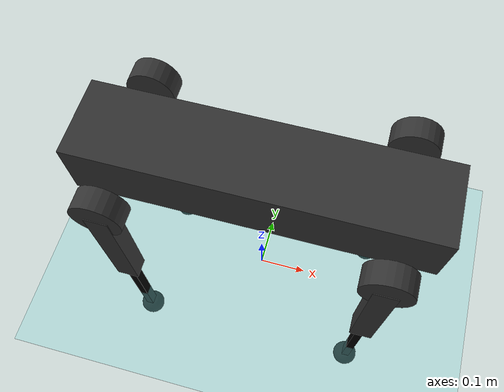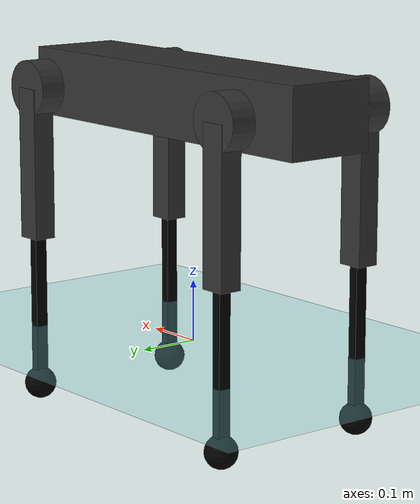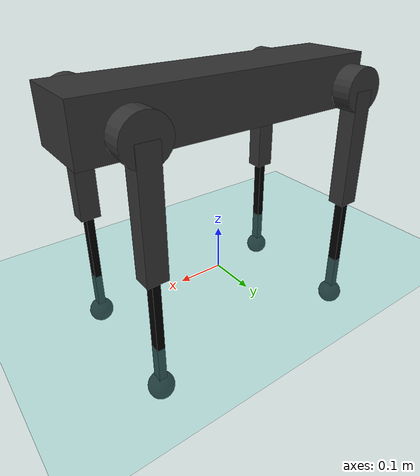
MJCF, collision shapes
<mujoco model="aliengo_description">
    <compiler angle="radian" meshdir="meshes/" />
    <size njmax="500" nconmax="100" />
    <option gravity="0 0 -9.806"
            iterations="50"
            solver="Newton"
            timestep="0.002"
            cone="elliptic"
            impratio="1000"/>

    <default>
        <geom contype="1"
              conaffinity="1"
              friction="1 0.3 0.3"
              rgba="0.5 0.6 0.7 1"
              margin="0.001"
              group="0"/>

        <light castshadow="false" diffuse="1 1 1"/>
        <camera fovy="60"/>
        <joint damping="0.0" armature="0.0" frictionloss="0.0" />
    </default>

    <asset>
        <mesh name="trunk" file="trunk.stl" />
        <mesh name="hip" file="hip.stl" />
        <mesh name="thigh_mirror" file="thigh_mirror.stl" />
        <mesh name="calf" file="calf.stl" />
        <mesh name="thigh" file="thigh.stl" />
    </asset>

    <asset>
        <texture type="skybox"
                 builtin="gradient"
                 rgb1="1.0 1.0 1.0"
                 rgb2="1.0 1.0 1.0"
                 width="512"
                 height="512"/>
        <texture name="plane"
                 type="2d"
                 builtin="flat"
                 rgb1="0.188 0.188 0.188"
                 rgb2="0.188 0.188 0.188"
                 width="512"
                 height="512"
                 mark="cross"
                 markrgb="1 1 1"/>
        <material name="plane"
                  reflectance="0.0"
                  texture="plane"
                  texrepeat="3 3"
                  texuniform="true"/>
    </asset>

    <visual>
        <rgba com="0.502 1.0 0 0.5"
              contactforce="0.98 0.4 0.4 0.7"
              contactpoint="1.0 1.0 0.6 0.4"/>
        <scale com="0.2"
               forcewidth="0.035"
               contactwidth="0.10"
               contactheight="0.04"/>
    </visual>

    <worldbody>
        <light directional="true" diffuse=".8 .8 .8" pos="0 0 10" dir="0 0 -10"/>
        <camera name="track" mode="trackcom" pos="0 -1.3 1.6" xyaxes="1 0 0 0 0.707 0.707"/>

        <geom name="floor"
              type="plane"
              conaffinity="1"
              condim="3"
              contype="1"
              rgba="0.5 0.9 0.9 0.1"
              material="plane"
              pos="0 0 0"
              size="0 0 1"/>

        <body name="trunk" pos="0 0 0.4">
            <!-- Matched to URDF trunk inertial -->
            <inertial pos="0.008811 0.003839 0.000273"
                      mass="11.644"
                      fullinertia="0.051944892 0.24693924 0.270948307 0.001703617 0.000235941 0.000119783" />

            <joint type="free" />

            <geom type="mesh"
                  contype="0"
                  conaffinity="0"
                  group="1"
                  rgba="0.2 0.2 0.2 1"
                  mesh="trunk" />

            <!-- Matched to URDF trunk collision box: full size 0.647 0.15 0.112 -->
            <geom size="0.3235 0.075 0.056"
                  type="box"
                  rgba="0.2 0.2 0.2 0" />

            <geom size="0.0005 0.0005 0.0005"
                  type="box"
                  contype="0"
                  conaffinity="0"
                  group="1"
                  rgba="0.8 0 0 0" />

            <geom size="0.0005 0.0005 0.0005"
                  type="box"
                  rgba="0.8 0 0 0" />

            <site name="imu" pos="0 0 0"/>

            <!-- Optional 1 g IMU inertial from URDF -->
            <body name="imu_link" pos="0 0 0">
                <inertial pos="0 0 0"
                          mass="0.001"
                          fullinertia="0.0001 0.000001 0.0001 0 0 0" />
            </body>

            <!-- Hip rotors fixed to trunk, matched to URDF -->
            <body name="FR_hip_rotor" pos="0.139985 -0.051 0">
                <inertial pos="0 0 0"
                          mass="0.146"
                          fullinertia="0.000138702 0.000083352 0.000083352 0 0 0" />
            </body>

            <body name="FL_hip_rotor" pos="0.139985 0.051 0">
                <inertial pos="0 0 0"
                          mass="0.146"
                          fullinertia="0.000138702 0.000083352 0.000083352 0 0 0" />
            </body>

            <body name="RR_hip_rotor" pos="-0.139985 -0.051 0">
                <inertial pos="0 0 0"
                          mass="0.146"
                          fullinertia="0.000138702 0.000083352 0.000083352 0 0 0" />
            </body>

            <body name="RL_hip_rotor" pos="-0.139985 0.051 0">
                <inertial pos="0 0 0"
                          mass="0.146"
                          fullinertia="0.000138702 0.000083352 0.000083352 0 0 0" />
            </body>

            <body name="FR_hip" pos="0.2407 -0.051 0">
                <inertial pos="-0.022191 -0.015144 -1.5e-05"
                          quat="0.0135493 0.706835 -0.0117635 0.707151"
                          mass="1.993"
                          diaginertia="0.00558695 0.00491009 0.00290132" />

                <joint name="FR_hip_joint"
                       pos="0 0 0"
                       axis="1 0 0"
                       limited="true"
                       range="-1.22173 1.22173" />

                <geom quat="0 1 0 0"
                      type="mesh"
                      contype="0"
                      conaffinity="0"
                      group="1"
                      rgba="0.2 0.2 0.2 1"
                      mesh="hip" />

                <geom size="0.046 0.0209"
                      pos="0 -0.083 0"
                      quat="0.707107 0.707107 0 0"
                      type="cylinder"
                      rgba="0.2 0.2 0.2 0" />

                <body name="FR_thigh_rotor" pos="0 -0.0298 0">
                    <inertial pos="0 0 0"
                              mass="0.146"
                              fullinertia="0.000083352 0.000138702 0.000083352 0 0 0" />
                </body>

                <body name="FR_thigh" pos="0 -0.0868 0">
                    <inertial pos="-0.005607 0.003877 -0.048199"
                              quat="0.694544 -0.0335669 -0.031246 0.717987"
                              mass="0.639"
                              diaginertia="0.0058474 0.00571186 0.000324584" />

                    <joint name="FR_thigh_joint"
                           pos="0 0 0"
                           axis="0 1 0" />

                    <geom type="mesh"
                          contype="0"
                          conaffinity="0"
                          group="1"
                          rgba="0.2 0.2 0.2 1"
                          mesh="thigh_mirror" />

                    <geom size="0.125 0.0187 0.0215"
                          pos="0 0 -0.125"
                          quat="0.707107 0 0.707107 0"
                          type="box"
                          rgba="0.2 0.2 0.2 0" />

                    <body name="FR_calf_rotor" pos="0 0.0997 0">
                        <inertial pos="0 0 0"
                                  mass="0.132"
                                  fullinertia="0.000145463 0.000133031 0.000145463 0 0 0" />
                    </body>

                    <body name="FR_calf" pos="0 0 -0.25">
                        <inertial pos="0.00215606 4.88427e-05 -0.166671"
                                  quat="0.707462 0.00517582 0.00535172 0.706712"
                                  mass="0.267"
                                  diaginertia="0.00690975 0.00689712 5.4885e-05" />

                        <joint name="FR_calf_joint"
                               pos="0 0 0"
                               axis="0 1 0"
                               limited="true"
                               range="-2.77507 -0.645772" />

                        <geom type="mesh"
                              contype="0"
                              conaffinity="0"
                              group="1"
                              rgba="0 0 0 1"
                              mesh="calf" />

                        <geom size="0.125 0.0104 0.008"
                              pos="0 0 -0.125"
                              quat="0.707107 0 0.707107 0"
                              type="box"
                              rgba="0 0 0 0" />

                        <geom name="FR_foot"
                              size="0.0165"
                              pos="0 0 -0.25"
                              contype="0"
                              conaffinity="0"
                              group="1"
                              rgba="0 0 0 1" />

                        <geom size="0.0265"
                              pos="0 0 -0.25"
                              rgba="0 0 0 1" />
                    </body>
                </body>
            </body>

            <body name="FL_hip" pos="0.2407 0.051 0">
                <inertial pos="-0.022191 0.015144 -1.5e-05"
                          quat="-0.0135493 0.706835 0.0117635 0.707151"
                          mass="1.993"
                          diaginertia="0.00558695 0.00491009 0.00290132" />

                <joint name="FL_hip_joint"
                       pos="0 0 0"
                       axis="1 0 0"
                       limited="true"
                       range="-1.22173 1.22173" />

                <geom type="mesh"
                      contype="0"
                      conaffinity="0"
                      group="1"
                      rgba="0.2 0.2 0.2 1"
                      mesh="hip" />

                <geom size="0.046 0.0209"
                      pos="0 0.083 0"
                      quat="0.707107 0.707107 0 0"
                      type="cylinder"
                      rgba="0.2 0.2 0.2 0" />

                <body name="FL_thigh_rotor" pos="0 0.0298 0">
                    <inertial pos="0 0 0"
                              mass="0.146"
                              fullinertia="0.000083352 0.000138702 0.000083352 0 0 0" />
                </body>

                <body name="FL_thigh" pos="0 0.0868 0">
                    <inertial pos="-0.005607 -0.003877 -0.048199"
                              quat="0.717987 -0.031246 -0.0335669 0.694544"
                              mass="0.639"
                              diaginertia="0.0058474 0.00571186 0.000324584" />

                    <joint name="FL_thigh_joint"
                           pos="0 0 0"
                           axis="0 1 0" />

                    <geom type="mesh"
                          contype="0"
                          conaffinity="0"
                          group="1"
                          rgba="0.2 0.2 0.2 1"
                          mesh="thigh" />

                    <geom size="0.125 0.0187 0.0215"
                          pos="0 0 -0.125"
                          quat="0.707107 0 0.707107 0"
                          type="box"
                          rgba="0.2 0.2 0.2 0" />

                    <body name="FL_calf_rotor" pos="0 -0.0997 0">
                        <inertial pos="0 0 0"
                                  mass="0.132"
                                  fullinertia="0.000145463 0.000133031 0.000145463 0 0 0" />
                    </body>

                    <body name="FL_calf" pos="0 0 -0.25">
                        <inertial pos="0.00215606 4.88427e-05 -0.166671"
                                  quat="0.707462 0.00517582 0.00535172 0.706712"
                                  mass="0.267"
                                  diaginertia="0.00690975 0.00689712 5.4885e-05" />

                        <joint name="FL_calf_joint"
                               pos="0 0 0"
                               axis="0 1 0"
                               limited="true"
                               range="-2.77507 -0.645772" />

                        <geom type="mesh"
                              contype="0"
                              conaffinity="0"
                              group="1"
                              rgba="0 0 0 1"
                              mesh="calf" />

                        <geom size="0.125 0.0104 0.008"
                              pos="0 0 -0.125"
                              quat="0.707107 0 0.707107 0"
                              type="box"
                              rgba="0 0 0 0" />

                        <geom name="FL_foot"
                              size="0.0165"
                              pos="0 0 -0.25"
                              contype="0"
                              conaffinity="0"
                              group="1"
                              rgba="0 0 0 1" />

                        <geom size="0.0265"
                              pos="0 0 -0.25"
                              rgba="0 0 0 1" />
                    </body>
                </body>
            </body>

            <body name="RR_hip" pos="-0.2407 -0.051 0">
                <inertial pos="0.022191 -0.015144 -1.5e-05"
                          quat="-0.0117635 0.707151 0.0135493 0.706835"
                          mass="1.993"
                          diaginertia="0.00558695 0.00491009 0.00290132" />

                <joint name="RR_hip_joint"
                       pos="0 0 0"
                       axis="1 0 0"
                       limited="true"
                       range="-1.22173 1.22173" />

                <geom quat="0 0 0 -1"
                      type="mesh"
                      contype="0"
                      conaffinity="0"
                      group="1"
                      rgba="0.2 0.2 0.2 1"
                      mesh="hip" />

                <geom size="0.046 0.0209"
                      pos="0 -0.083 0"
                      quat="0.707107 0.707107 0 0"
                      type="cylinder"
                      rgba="0.2 0.2 0.2 0" />

                <body name="RR_thigh_rotor" pos="0 -0.0298 0">
                    <inertial pos="0 0 0"
                              mass="0.146"
                              fullinertia="0.000083352 0.000138702 0.000083352 0 0 0" />
                </body>

                <body name="RR_thigh" pos="0 -0.0868 0">
                    <inertial pos="-0.005607 0.003877 -0.048199"
                              quat="0.694544 -0.0335669 -0.031246 0.717987"
                              mass="0.639"
                              diaginertia="0.0058474 0.00571186 0.000324584" />

                    <joint name="RR_thigh_joint"
                           pos="0 0 0"
                           axis="0 1 0" />

                    <geom type="mesh"
                          contype="0"
                          conaffinity="0"
                          group="1"
                          rgba="0.2 0.2 0.2 1"
                          mesh="thigh_mirror" />

                    <geom size="0.125 0.0187 0.0215"
                          pos="0 0 -0.125"
                          quat="0.707107 0 0.707107 0"
                          type="box"
                          rgba="0.2 0.2 0.2 0" />

                    <body name="RR_calf_rotor" pos="0 0.0997 0">
                        <inertial pos="0 0 0"
                                  mass="0.132"
                                  fullinertia="0.000145463 0.000133031 0.000145463 0 0 0" />
                    </body>

                    <body name="RR_calf" pos="0 0 -0.25">
                        <inertial pos="0.00215606 4.88427e-05 -0.166671"
                                  quat="0.707462 0.00517582 0.00535172 0.706712"
                                  mass="0.267"
                                  diaginertia="0.00690975 0.00689712 5.4885e-05" />

                        <joint name="RR_calf_joint"
                               pos="0 0 0"
                               axis="0 1 0"
                               limited="true"
                               range="-2.77507 -0.645772" />

                        <geom type="mesh"
                              contype="0"
                              conaffinity="0"
                              group="1"
                              rgba="0 0 0 1"
                              mesh="calf" />

                        <geom size="0.125 0.0104 0.008"
                              pos="0 0 -0.125"
                              quat="0.707107 0 0.707107 0"
                              type="box"
                              rgba="0 0 0 0" />

                        <geom name="RR_foot"
                              size="0.0165"
                              pos="0 0 -0.25"
                              contype="0"
                              conaffinity="0"
                              group="1"
                              rgba="0 0 0 1" />

                        <geom size="0.0265"
                              pos="0 0 -0.25"
                              rgba="0 0 0 1" />
                    </body>
                </body>
            </body>

            <body name="RL_hip" pos="-0.2407 0.051 0">
                <inertial pos="0.022191 0.015144 -1.5e-05"
                          quat="0.0117635 0.707151 -0.0135493 0.706835"
                          mass="1.993"
                          diaginertia="0.00558695 0.00491009 0.00290132" />

                <joint name="RL_hip_joint"
                       pos="0 0 0"
                       axis="1 0 0"
                       limited="true"
                       range="-1.22173 1.22173" />

                <geom quat="0 0 1 0"
                      type="mesh"
                      contype="0"
                      conaffinity="0"
                      group="1"
                      rgba="0.2 0.2 0.2 1"
                      mesh="hip" />

                <geom size="0.046 0.0209"
                      pos="0 0.083 0"
                      quat="0.707107 0.707107 0 0"
                      type="cylinder"
                      rgba="0.2 0.2 0.2 0" />

                <body name="RL_thigh_rotor" pos="0 0.0298 0">
                    <inertial pos="0 0 0"
                              mass="0.146"
                              fullinertia="0.000083352 0.000138702 0.000083352 0 0 0" />
                </body>

                <body name="RL_thigh" pos="0 0.0868 0">
                    <inertial pos="-0.005607 -0.003877 -0.048199"
                              quat="0.717987 -0.031246 -0.0335669 0.694544"
                              mass="0.639"
                              diaginertia="0.0058474 0.00571186 0.000324584" />

                    <joint name="RL_thigh_joint"
                           pos="0 0 0"
                           axis="0 1 0" />

                    <geom type="mesh"
                          contype="0"
                          conaffinity="0"
                          group="1"
                          rgba="0.2 0.2 0.2 1"
                          mesh="thigh" />

                    <geom size="0.125 0.0187 0.0215"
                          pos="0 0 -0.125"
                          quat="0.707107 0 0.707107 0"
                          type="box"
                          rgba="0.2 0.2 0.2 0" />

                    <body name="RL_calf_rotor" pos="0 -0.0997 0">
                        <inertial pos="0 0 0"
                                  mass="0.132"
                                  fullinertia="0.000145463 0.000133031 0.000145463 0 0 0" />
                    </body>

                    <body name="RL_calf" pos="0 0 -0.25">
                        <inertial pos="0.00215606 4.88427e-05 -0.166671"
                                  quat="0.707462 0.00517582 0.00535172 0.706712"
                                  mass="0.267"
                                  diaginertia="0.00690975 0.00689712 5.4885e-05" />

                        <joint name="RL_calf_joint"
                               pos="0 0 0"
                               axis="0 1 0"
                               limited="true"
                               range="-2.77507 -0.645772" />

                        <geom type="mesh"
                              contype="0"
                              conaffinity="0"
                              group="1"
                              rgba="0 0 0 1"
                              mesh="calf" />

                        <geom size="0.125 0.0104 0.008"
                              pos="0 0 -0.125"
                              quat="0.707107 0 0.707107 0"
                              type="box"
                              rgba="0 0 0 0" />

                        <geom name="RL_foot"
                              size="0.0165"
                              pos="0 0 -0.25"
                              contype="0"
                              conaffinity="0"
                              group="1"
                              rgba="0 0 0 1" />

                        <geom size="0.0265"
                              pos="0 0 -0.25"
                              rgba="0 0 0 1" />
                    </body>
                </body>
            </body>
        </body>
    </worldbody>

    <actuator>
        <!-- Torque limits matched to URDF effort limits:
             hip/thigh: 35.278 Nm, calf: 44.4 Nm -->

        <motor name="FR_hip"
               gear="1"
               joint="FR_hip_joint"
               ctrlrange="-35.278 35.278"
               ctrllimited="true"/>

        <motor name="FR_thigh"
               gear="1"
               joint="FR_thigh_joint"
               ctrlrange="-35.278 35.278"
               ctrllimited="true"/>

        <motor name="FR_calf"
               gear="1"
               joint="FR_calf_joint"
               ctrlrange="-44.4 44.4"
               ctrllimited="true"/>

        <motor name="FL_hip"
               gear="1"
               joint="FL_hip_joint"
               ctrlrange="-35.278 35.278"
               ctrllimited="true"/>

        <motor name="FL_thigh"
               gear="1"
               joint="FL_thigh_joint"
               ctrlrange="-35.278 35.278"
               ctrllimited="true"/>

        <motor name="FL_calf"
               gear="1"
               joint="FL_calf_joint"
               ctrlrange="-44.4 44.4"
               ctrllimited="true"/>

        <motor name="RR_hip"
               gear="1"
               joint="RR_hip_joint"
               ctrlrange="-35.278 35.278"
               ctrllimited="true"/>

        <motor name="RR_thigh"
               gear="1"
               joint="RR_thigh_joint"
               ctrlrange="-35.278 35.278"
               ctrllimited="true"/>

        <motor name="RR_calf"
               gear="1"
               joint="RR_calf_joint"
               ctrlrange="-44.4 44.4"
               ctrllimited="true"/>

        <motor name="RL_hip"
               gear="1"
               joint="RL_hip_joint"
               ctrlrange="-35.278 35.278"
               ctrllimited="true"/>

        <motor name="RL_thigh"
               gear="1"
               joint="RL_thigh_joint"
               ctrlrange="-35.278 35.278"
               ctrllimited="true"/>

        <motor name="RL_calf"
               gear="1"
               joint="RL_calf_joint"
               ctrlrange="-44.4 44.4"
               ctrllimited="true"/>
    </actuator>

    <sensor>
        <jointpos name="FR_hip_pos" joint="FR_hip_joint"/>
        <jointpos name="FR_thigh_pos" joint="FR_thigh_joint"/>
        <jointpos name="FR_calf_pos" joint="FR_calf_joint"/>
        <jointpos name="FL_hip_pos" joint="FL_hip_joint"/>
        <jointpos name="FL_thigh_pos" joint="FL_thigh_joint"/>
        <jointpos name="FL_calf_pos" joint="FL_calf_joint"/>
        <jointpos name="RR_hip_pos" joint="RR_hip_joint"/>
        <jointpos name="RR_thigh_pos" joint="RR_thigh_joint"/>
        <jointpos name="RR_calf_pos" joint="RR_calf_joint"/>
        <jointpos name="RL_hip_pos" joint="RL_hip_joint"/>
        <jointpos name="RL_thigh_pos" joint="RL_thigh_joint"/>
        <jointpos name="RL_calf_pos" joint="RL_calf_joint"/>

        <jointvel name="FR_hip_vel" joint="FR_hip_joint"/>
        <jointvel name="FR_thigh_vel" joint="FR_thigh_joint"/>
        <jointvel name="FR_calf_vel" joint="FR_calf_joint"/>
        <jointvel name="FL_hip_vel" joint="FL_hip_joint"/>
        <jointvel name="FL_thigh_vel" joint="FL_thigh_joint"/>
        <jointvel name="FL_calf_vel" joint="FL_calf_joint"/>
        <jointvel name="RR_hip_vel" joint="RR_hip_joint"/>
        <jointvel name="RR_thigh_vel" joint="RR_thigh_joint"/>
        <jointvel name="RR_calf_vel" joint="RR_calf_joint"/>
        <jointvel name="RL_hip_vel" joint="RL_hip_joint"/>
        <jointvel name="RL_thigh_vel" joint="RL_thigh_joint"/>
        <jointvel name="RL_calf_vel" joint="RL_calf_joint"/>

        <accelerometer name="Body_Acc" site="imu"/>
        <gyro name="Body_Gyro" site="imu"/>
        <framepos name="Body_Pos" objtype="site" objname="imu"/>
        <framequat name="Body_Quat" objtype="site" objname="imu"/>
    </sensor>
</mujoco>
